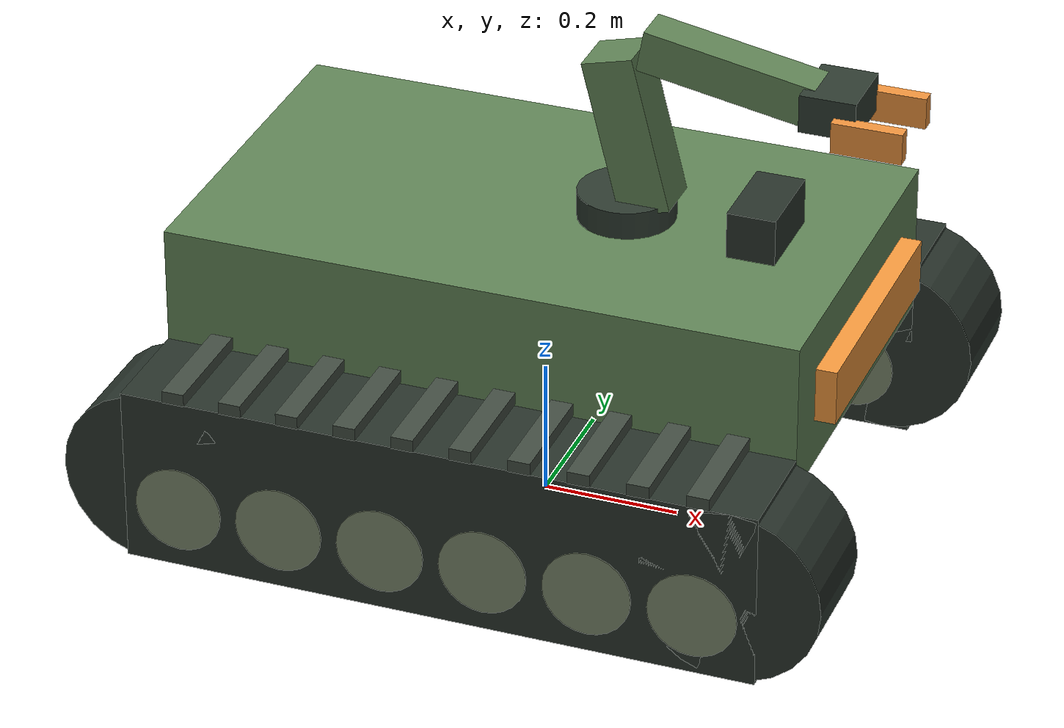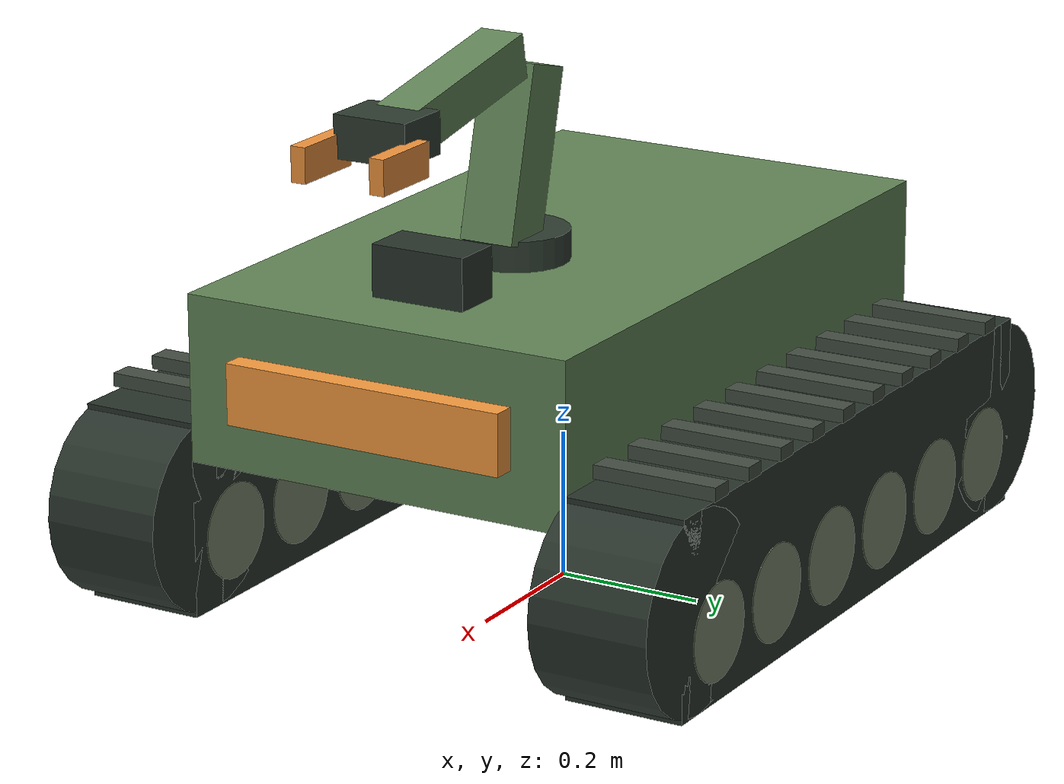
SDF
<?xml version='1.0' encoding='utf-8'?>
<sdf version="1.10">
  <model name="robot">
    <static>false</static>
    <link name="base_link">
      <inertial>
        <mass>52.4</mass>
        <pose>0 0 0.35 0 0 0</pose>
        <inertia>
          <ixx>1.4846666666666668</ixx>
          <iyy>3.9072933333333335</iyy>
          <izz>4.969266666666667</izz>
        </inertia>
      </inertial>
      <collision name="body_collision">
        <pose>0 0 0.36 0 0 0</pose>
        <geometry>
          <box>
            <size>0.78 0.46 0.18</size>
          </box>
        </geometry>
        <surface>
          <friction>
            <ode>
              <mu>0.6</mu>
              <mu2>0.6</mu2>
            </ode>
          </friction>
        </surface>
      </collision>
      <visual name="body">
        <pose>0 0 0.36 0 0 0</pose>
        <geometry>
          <box>
            <size>0.92 0.54 0.22</size>
          </box>
        </geometry>
        <material>
          <diffuse>0.38 0.52 0.34 1</diffuse>
        </material>
      </visual>
      <visual name="front_marker">
        <pose>0.47000000000000003 0 0.36 0 0 0</pose>
        <geometry>
          <box>
            <size>0.04 0.38880000000000003 0.08</size>
          </box>
        </geometry>
        <material>
          <diffuse>0.96 0.6 0.24 1</diffuse>
        </material>
      </visual>
      <visual name="camera">
        <pose>0.322 0 0.503 0 0 0</pose>
        <geometry>
          <box>
            <size>0.07 0.13 0.07</size>
          </box>
        </geometry>
        <material>
          <diffuse>0.16 0.2 0.17 1</diffuse>
        </material>
      </visual>
      <visual name="left_track_envelope">
        <pose>0 0.35 0.17 0 0 0</pose>
        <geometry>
          <box>
            <size>0.92 0.16 0.26</size>
          </box>
        </geometry>
        <material>
          <diffuse>0.16 0.2 0.17 1</diffuse>
        </material>
      </visual>
      <visual name="left_rear_idler_visual">
        <pose>-0.42 0.35 0.17 1.5707963267948966 0 0</pose>
        <geometry>
          <cylinder>
            <radius>0.13</radius>
            <length>0.16</length>
          </cylinder>
        </geometry>
        <material>
          <diffuse>0.16 0.2 0.17 1</diffuse>
        </material>
      </visual>
      <visual name="left_front_idler_visual">
        <pose>0.42 0.35 0.17 1.5707963267948966 0 0</pose>
        <geometry>
          <cylinder>
            <radius>0.13</radius>
            <length>0.16</length>
          </cylinder>
        </geometry>
        <material>
          <diffuse>0.16 0.2 0.17 1</diffuse>
        </material>
      </visual>
      <visual name="left_tread_0">
        <pose>-0.378 0.35 0.31200000000000006 0 0 0</pose>
        <geometry>
          <box>
            <size>0.032 0.1728 0.018</size>
          </box>
        </geometry>
        <material>
          <diffuse>0.26 0.3 0.26 1</diffuse>
        </material>
      </visual>
      <visual name="left_tread_1">
        <pose>-0.294 0.35 0.31200000000000006 0 0 0</pose>
        <geometry>
          <box>
            <size>0.032 0.1728 0.018</size>
          </box>
        </geometry>
        <material>
          <diffuse>0.26 0.3 0.26 1</diffuse>
        </material>
      </visual>
      <visual name="left_tread_2">
        <pose>-0.20999999999999996 0.35 0.31200000000000006 0 0 0</pose>
        <geometry>
          <box>
            <size>0.032 0.1728 0.018</size>
          </box>
        </geometry>
        <material>
          <diffuse>0.26 0.3 0.26 1</diffuse>
        </material>
      </visual>
      <visual name="left_tread_3">
        <pose>-0.126 0.35 0.31200000000000006 0 0 0</pose>
        <geometry>
          <box>
            <size>0.032 0.1728 0.018</size>
          </box>
        </geometry>
        <material>
          <diffuse>0.26 0.3 0.26 1</diffuse>
        </material>
      </visual>
      <visual name="left_tread_4">
        <pose>-0.04199999999999998 0.35 0.31200000000000006 0 0 0</pose>
        <geometry>
          <box>
            <size>0.032 0.1728 0.018</size>
          </box>
        </geometry>
        <material>
          <diffuse>0.26 0.3 0.26 1</diffuse>
        </material>
      </visual>
      <visual name="left_tread_5">
        <pose>0.04200000000000004 0.35 0.31200000000000006 0 0 0</pose>
        <geometry>
          <box>
            <size>0.032 0.1728 0.018</size>
          </box>
        </geometry>
        <material>
          <diffuse>0.26 0.3 0.26 1</diffuse>
        </material>
      </visual>
      <visual name="left_tread_6">
        <pose>0.12600000000000006 0.35 0.31200000000000006 0 0 0</pose>
        <geometry>
          <box>
            <size>0.032 0.1728 0.018</size>
          </box>
        </geometry>
        <material>
          <diffuse>0.26 0.3 0.26 1</diffuse>
        </material>
      </visual>
      <visual name="left_tread_7">
        <pose>0.21000000000000002 0.35 0.31200000000000006 0 0 0</pose>
        <geometry>
          <box>
            <size>0.032 0.1728 0.018</size>
          </box>
        </geometry>
        <material>
          <diffuse>0.26 0.3 0.26 1</diffuse>
        </material>
      </visual>
      <visual name="left_tread_8">
        <pose>0.294 0.35 0.31200000000000006 0 0 0</pose>
        <geometry>
          <box>
            <size>0.032 0.1728 0.018</size>
          </box>
        </geometry>
        <material>
          <diffuse>0.26 0.3 0.26 1</diffuse>
        </material>
      </visual>
      <visual name="left_tread_9">
        <pose>0.37799999999999995 0.35 0.31200000000000006 0 0 0</pose>
        <geometry>
          <box>
            <size>0.032 0.1728 0.018</size>
          </box>
        </geometry>
        <material>
          <diffuse>0.26 0.3 0.26 1</diffuse>
        </material>
      </visual>
      <visual name="right_track_envelope">
        <pose>0 -0.35 0.17 0 0 0</pose>
        <geometry>
          <box>
            <size>0.92 0.16 0.26</size>
          </box>
        </geometry>
        <material>
          <diffuse>0.16 0.2 0.17 1</diffuse>
        </material>
      </visual>
      <visual name="right_rear_idler_visual">
        <pose>-0.42 -0.35 0.17 1.5707963267948966 0 0</pose>
        <geometry>
          <cylinder>
            <radius>0.13</radius>
            <length>0.16</length>
          </cylinder>
        </geometry>
        <material>
          <diffuse>0.16 0.2 0.17 1</diffuse>
        </material>
      </visual>
      <visual name="right_front_idler_visual">
        <pose>0.42 -0.35 0.17 1.5707963267948966 0 0</pose>
        <geometry>
          <cylinder>
            <radius>0.13</radius>
            <length>0.16</length>
          </cylinder>
        </geometry>
        <material>
          <diffuse>0.16 0.2 0.17 1</diffuse>
        </material>
      </visual>
      <visual name="right_tread_0">
        <pose>-0.378 -0.35 0.31200000000000006 0 0 0</pose>
        <geometry>
          <box>
            <size>0.032 0.1728 0.018</size>
          </box>
        </geometry>
        <material>
          <diffuse>0.26 0.3 0.26 1</diffuse>
        </material>
      </visual>
      <visual name="right_tread_1">
        <pose>-0.294 -0.35 0.31200000000000006 0 0 0</pose>
        <geometry>
          <box>
            <size>0.032 0.1728 0.018</size>
          </box>
        </geometry>
        <material>
          <diffuse>0.26 0.3 0.26 1</diffuse>
        </material>
      </visual>
      <visual name="right_tread_2">
        <pose>-0.20999999999999996 -0.35 0.31200000000000006 0 0 0</pose>
        <geometry>
          <box>
            <size>0.032 0.1728 0.018</size>
          </box>
        </geometry>
        <material>
          <diffuse>0.26 0.3 0.26 1</diffuse>
        </material>
      </visual>
      <visual name="right_tread_3">
        <pose>-0.126 -0.35 0.31200000000000006 0 0 0</pose>
        <geometry>
          <box>
            <size>0.032 0.1728 0.018</size>
          </box>
        </geometry>
        <material>
          <diffuse>0.26 0.3 0.26 1</diffuse>
        </material>
      </visual>
      <visual name="right_tread_4">
        <pose>-0.04199999999999998 -0.35 0.31200000000000006 0 0 0</pose>
        <geometry>
          <box>
            <size>0.032 0.1728 0.018</size>
          </box>
        </geometry>
        <material>
          <diffuse>0.26 0.3 0.26 1</diffuse>
        </material>
      </visual>
      <visual name="right_tread_5">
        <pose>0.04200000000000004 -0.35 0.31200000000000006 0 0 0</pose>
        <geometry>
          <box>
            <size>0.032 0.1728 0.018</size>
          </box>
        </geometry>
        <material>
          <diffuse>0.26 0.3 0.26 1</diffuse>
        </material>
      </visual>
      <visual name="right_tread_6">
        <pose>0.12600000000000006 -0.35 0.31200000000000006 0 0 0</pose>
        <geometry>
          <box>
            <size>0.032 0.1728 0.018</size>
          </box>
        </geometry>
        <material>
          <diffuse>0.26 0.3 0.26 1</diffuse>
        </material>
      </visual>
      <visual name="right_tread_7">
        <pose>0.21000000000000002 -0.35 0.31200000000000006 0 0 0</pose>
        <geometry>
          <box>
            <size>0.032 0.1728 0.018</size>
          </box>
        </geometry>
        <material>
          <diffuse>0.26 0.3 0.26 1</diffuse>
        </material>
      </visual>
      <visual name="right_tread_8">
        <pose>0.294 -0.35 0.31200000000000006 0 0 0</pose>
        <geometry>
          <box>
            <size>0.032 0.1728 0.018</size>
          </box>
        </geometry>
        <material>
          <diffuse>0.26 0.3 0.26 1</diffuse>
        </material>
      </visual>
      <visual name="right_tread_9">
        <pose>0.37799999999999995 -0.35 0.31200000000000006 0 0 0</pose>
        <geometry>
          <box>
            <size>0.032 0.1728 0.018</size>
          </box>
        </geometry>
        <material>
          <diffuse>0.26 0.3 0.26 1</diffuse>
        </material>
      </visual>
      <visual name="arm_base_0">
        <pose>0.12 0 0.45999999999999996 0 0 0</pose>
        <geometry>
          <cylinder>
            <radius>0.07</radius>
            <length>0.1</length>
          </cylinder>
        </geometry>
        <material>
          <diffuse>0.18 0.23 0.19 1</diffuse>
        </material>
      </visual>
      <visual name="upper_arm_0">
        <pose>0.13 0 0.61 0 -0.25 0</pose>
        <geometry>
          <box>
            <size>0.075 0.075 0.23</size>
          </box>
        </geometry>
        <material>
          <diffuse>0.38 0.52 0.34 1</diffuse>
        </material>
      </visual>
      <visual name="forearm_0">
        <pose>0.27 0 0.72 0 0.18 0</pose>
        <geometry>
          <box>
            <size>0.25 0.06 0.06</size>
          </box>
        </geometry>
        <material>
          <diffuse>0.38 0.52 0.34 1</diffuse>
        </material>
      </visual>
      <visual name="wrist_0">
        <pose>0.42 0 0.7 0 0 0</pose>
        <geometry>
          <box>
            <size>0.08 0.1 0.055</size>
          </box>
        </geometry>
        <material>
          <diffuse>0.18 0.23 0.19 1</diffuse>
        </material>
      </visual>
      <visual name="jaw_0_-0.055">
        <pose>0.48 -0.055 0.6799999999999999 0 0 0</pose>
        <geometry>
          <box>
            <size>0.1 0.02 0.045</size>
          </box>
        </geometry>
        <material>
          <diffuse>0.94 0.58 0.24 1</diffuse>
        </material>
      </visual>
      <visual name="jaw_0_0.055">
        <pose>0.48 0.055 0.6799999999999999 0 0 0</pose>
        <geometry>
          <box>
            <size>0.1 0.02 0.045</size>
          </box>
        </geometry>
        <material>
          <diffuse>0.94 0.58 0.24 1</diffuse>
        </material>
      </visual>
      <sensor name="imu" type="imu">
        <always_on>true</always_on>
        <update_rate>50</update_rate>
        <topic>/garden/imu</topic>
        <imu />
      </sensor>
    </link>
    <link name="left_carrier_0">
      <pose>-0.38 0.35 0.13 0 0 0</pose>
      <inertial>
        <mass>0.05</mass>
        <pose>0 0 0 0 0 0</pose>
        <inertia>
          <ixx>7.5e-06</ixx>
          <iyy>7.5e-06</iyy>
          <izz>7.5e-06</izz>
        </inertia>
      </inertial>
    </link>
    <joint name="left_suspension_0" type="prismatic">
      <parent>base_link</parent>
      <child>left_carrier_0</child>
      <axis>
        <xyz>0 0 1</xyz>
        <limit>
          <lower>-0.07</lower>
          <upper>0.07</upper>
          <effort>2500</effort>
          <velocity>1.5</velocity>
        </limit>
        <dynamics>
          <damping>120</damping>
          <spring_reference>0</spring_reference>
          <spring_stiffness>6500</spring_stiffness>
        </dynamics>
      </axis>
    </joint>
    <link name="left_wheel">
      <pose>-0.38 0.35 0.13 1.5707963267948966 0 0</pose>
      <inertial>
        <mass>1.0</mass>
        <inertia>
          <ixx>0.0030062500000000002</ixx>
          <iyy>0.0030062500000000002</iyy>
          <izz>0.0036125000000000007</izz>
        </inertia>
      </inertial>
      <collision name="wheel_collision">
        <pose>0 0 0 0 0 0</pose>
        <geometry>
          <cylinder>
            <radius>0.085</radius>
            <length>0.12</length>
          </cylinder>
        </geometry>
        <surface>
          <friction>
            <ode>
              <mu>0.9</mu>
              <mu2>0.9</mu2>
            </ode>
          </friction>
        </surface>
      </collision>
      <visual name="roller">
        <pose>0 0 0 0 0 0</pose>
        <geometry>
          <cylinder>
            <radius>0.06375</radius>
            <length>0.162</length>
          </cylinder>
        </geometry>
        <material>
          <diffuse>0.48 0.53 0.42 1</diffuse>
        </material>
      </visual>
    </link>
    <joint name="left_joint" type="revolute">
      <parent>left_carrier_0</parent>
      <child>left_wheel</child>
      <axis>
        <xyz>0 0 -1</xyz>
        <limit>
          <effort>55.0</effort>
          <velocity>12.0</velocity>
        </limit>
      </axis>
    </joint>
    <link name="left_carrier_1">
      <pose>-0.23 0.35 0.13 0 0 0</pose>
      <inertial>
        <mass>0.05</mass>
        <pose>0 0 0 0 0 0</pose>
        <inertia>
          <ixx>7.5e-06</ixx>
          <iyy>7.5e-06</iyy>
          <izz>7.5e-06</izz>
        </inertia>
      </inertial>
    </link>
    <joint name="left_suspension_1" type="prismatic">
      <parent>base_link</parent>
      <child>left_carrier_1</child>
      <axis>
        <xyz>0 0 1</xyz>
        <limit>
          <lower>-0.07</lower>
          <upper>0.07</upper>
          <effort>2500</effort>
          <velocity>1.5</velocity>
        </limit>
        <dynamics>
          <damping>120</damping>
          <spring_reference>0</spring_reference>
          <spring_stiffness>6500</spring_stiffness>
        </dynamics>
      </axis>
    </joint>
    <link name="left_wheel_1">
      <pose>-0.23 0.35 0.13 1.5707963267948966 0 0</pose>
      <inertial>
        <mass>1.0</mass>
        <inertia>
          <ixx>0.0030062500000000002</ixx>
          <iyy>0.0030062500000000002</iyy>
          <izz>0.0036125000000000007</izz>
        </inertia>
      </inertial>
      <collision name="wheel_collision">
        <pose>0 0 0 0 0 0</pose>
        <geometry>
          <cylinder>
            <radius>0.085</radius>
            <length>0.12</length>
          </cylinder>
        </geometry>
        <surface>
          <friction>
            <ode>
              <mu>0.9</mu>
              <mu2>0.9</mu2>
            </ode>
          </friction>
        </surface>
      </collision>
      <visual name="roller">
        <pose>0 0 0 0 0 0</pose>
        <geometry>
          <cylinder>
            <radius>0.06375</radius>
            <length>0.162</length>
          </cylinder>
        </geometry>
        <material>
          <diffuse>0.48 0.53 0.42 1</diffuse>
        </material>
      </visual>
    </link>
    <joint name="left_joint_1" type="revolute">
      <parent>left_carrier_1</parent>
      <child>left_wheel_1</child>
      <axis>
        <xyz>0 0 -1</xyz>
        <limit>
          <effort>55.0</effort>
          <velocity>12.0</velocity>
        </limit>
      </axis>
    </joint>
    <link name="left_carrier_2">
      <pose>-0.08 0.35 0.13 0 0 0</pose>
      <inertial>
        <mass>0.05</mass>
        <pose>0 0 0 0 0 0</pose>
        <inertia>
          <ixx>7.5e-06</ixx>
          <iyy>7.5e-06</iyy>
          <izz>7.5e-06</izz>
        </inertia>
      </inertial>
    </link>
    <joint name="left_suspension_2" type="prismatic">
      <parent>base_link</parent>
      <child>left_carrier_2</child>
      <axis>
        <xyz>0 0 1</xyz>
        <limit>
          <lower>-0.07</lower>
          <upper>0.07</upper>
          <effort>2500</effort>
          <velocity>1.5</velocity>
        </limit>
        <dynamics>
          <damping>120</damping>
          <spring_reference>0</spring_reference>
          <spring_stiffness>6500</spring_stiffness>
        </dynamics>
      </axis>
    </joint>
    <link name="left_wheel_2">
      <pose>-0.08 0.35 0.13 1.5707963267948966 0 0</pose>
      <inertial>
        <mass>1.0</mass>
        <inertia>
          <ixx>0.0030062500000000002</ixx>
          <iyy>0.0030062500000000002</iyy>
          <izz>0.0036125000000000007</izz>
        </inertia>
      </inertial>
      <collision name="wheel_collision">
        <pose>0 0 0 0 0 0</pose>
        <geometry>
          <cylinder>
            <radius>0.085</radius>
            <length>0.12</length>
          </cylinder>
        </geometry>
        <surface>
          <friction>
            <ode>
              <mu>0.9</mu>
              <mu2>0.9</mu2>
            </ode>
          </friction>
        </surface>
      </collision>
      <visual name="roller">
        <pose>0 0 0 0 0 0</pose>
        <geometry>
          <cylinder>
            <radius>0.06375</radius>
            <length>0.162</length>
          </cylinder>
        </geometry>
        <material>
          <diffuse>0.48 0.53 0.42 1</diffuse>
        </material>
      </visual>
    </link>
    <joint name="left_joint_2" type="revolute">
      <parent>left_carrier_2</parent>
      <child>left_wheel_2</child>
      <axis>
        <xyz>0 0 -1</xyz>
        <limit>
          <effort>55.0</effort>
          <velocity>12.0</velocity>
        </limit>
      </axis>
    </joint>
    <link name="left_carrier_3">
      <pose>0.07 0.35 0.13 0 0 0</pose>
      <inertial>
        <mass>0.05</mass>
        <pose>0 0 0 0 0 0</pose>
        <inertia>
          <ixx>7.5e-06</ixx>
          <iyy>7.5e-06</iyy>
          <izz>7.5e-06</izz>
        </inertia>
      </inertial>
    </link>
    <joint name="left_suspension_3" type="prismatic">
      <parent>base_link</parent>
      <child>left_carrier_3</child>
      <axis>
        <xyz>0 0 1</xyz>
        <limit>
          <lower>-0.07</lower>
          <upper>0.07</upper>
          <effort>2500</effort>
          <velocity>1.5</velocity>
        </limit>
        <dynamics>
          <damping>120</damping>
          <spring_reference>0</spring_reference>
          <spring_stiffness>6500</spring_stiffness>
        </dynamics>
      </axis>
    </joint>
    <link name="left_wheel_3">
      <pose>0.07 0.35 0.13 1.5707963267948966 0 0</pose>
      <inertial>
        <mass>1.0</mass>
        <inertia>
          <ixx>0.0030062500000000002</ixx>
          <iyy>0.0030062500000000002</iyy>
          <izz>0.0036125000000000007</izz>
        </inertia>
      </inertial>
      <collision name="wheel_collision">
        <pose>0 0 0 0 0 0</pose>
        <geometry>
          <cylinder>
            <radius>0.085</radius>
            <length>0.12</length>
          </cylinder>
        </geometry>
        <surface>
          <friction>
            <ode>
              <mu>0.9</mu>
              <mu2>0.9</mu2>
            </ode>
          </friction>
        </surface>
      </collision>
      <visual name="roller">
        <pose>0 0 0 0 0 0</pose>
        <geometry>
          <cylinder>
            <radius>0.06375</radius>
            <length>0.162</length>
          </cylinder>
        </geometry>
        <material>
          <diffuse>0.48 0.53 0.42 1</diffuse>
        </material>
      </visual>
    </link>
    <joint name="left_joint_3" type="revolute">
      <parent>left_carrier_3</parent>
      <child>left_wheel_3</child>
      <axis>
        <xyz>0 0 -1</xyz>
        <limit>
          <effort>55.0</effort>
          <velocity>12.0</velocity>
        </limit>
      </axis>
    </joint>
    <link name="left_carrier_4">
      <pose>0.22 0.35 0.13 0 0 0</pose>
      <inertial>
        <mass>0.05</mass>
        <pose>0 0 0 0 0 0</pose>
        <inertia>
          <ixx>7.5e-06</ixx>
          <iyy>7.5e-06</iyy>
          <izz>7.5e-06</izz>
        </inertia>
      </inertial>
    </link>
    <joint name="left_suspension_4" type="prismatic">
      <parent>base_link</parent>
      <child>left_carrier_4</child>
      <axis>
        <xyz>0 0 1</xyz>
        <limit>
          <lower>-0.07</lower>
          <upper>0.07</upper>
          <effort>2500</effort>
          <velocity>1.5</velocity>
        </limit>
        <dynamics>
          <damping>120</damping>
          <spring_reference>0</spring_reference>
          <spring_stiffness>6500</spring_stiffness>
        </dynamics>
      </axis>
    </joint>
    <link name="left_wheel_4">
      <pose>0.22 0.35 0.13 1.5707963267948966 0 0</pose>
      <inertial>
        <mass>1.0</mass>
        <inertia>
          <ixx>0.0030062500000000002</ixx>
          <iyy>0.0030062500000000002</iyy>
          <izz>0.0036125000000000007</izz>
        </inertia>
      </inertial>
      <collision name="wheel_collision">
        <pose>0 0 0 0 0 0</pose>
        <geometry>
          <cylinder>
            <radius>0.085</radius>
            <length>0.12</length>
          </cylinder>
        </geometry>
        <surface>
          <friction>
            <ode>
              <mu>0.9</mu>
              <mu2>0.9</mu2>
            </ode>
          </friction>
        </surface>
      </collision>
      <visual name="roller">
        <pose>0 0 0 0 0 0</pose>
        <geometry>
          <cylinder>
            <radius>0.06375</radius>
            <length>0.162</length>
          </cylinder>
        </geometry>
        <material>
          <diffuse>0.48 0.53 0.42 1</diffuse>
        </material>
      </visual>
    </link>
    <joint name="left_joint_4" type="revolute">
      <parent>left_carrier_4</parent>
      <child>left_wheel_4</child>
      <axis>
        <xyz>0 0 -1</xyz>
        <limit>
          <effort>55.0</effort>
          <velocity>12.0</velocity>
        </limit>
      </axis>
    </joint>
    <link name="left_carrier_5">
      <pose>0.37 0.35 0.13 0 0 0</pose>
      <inertial>
        <mass>0.05</mass>
        <pose>0 0 0 0 0 0</pose>
        <inertia>
          <ixx>7.5e-06</ixx>
          <iyy>7.5e-06</iyy>
          <izz>7.5e-06</izz>
        </inertia>
      </inertial>
    </link>
    <joint name="left_suspension_5" type="prismatic">
      <parent>base_link</parent>
      <child>left_carrier_5</child>
      <axis>
        <xyz>0 0 1</xyz>
        <limit>
          <lower>-0.07</lower>
          <upper>0.07</upper>
          <effort>2500</effort>
          <velocity>1.5</velocity>
        </limit>
        <dynamics>
          <damping>120</damping>
          <spring_reference>0</spring_reference>
          <spring_stiffness>6500</spring_stiffness>
        </dynamics>
      </axis>
    </joint>
    <link name="left_wheel_5">
      <pose>0.37 0.35 0.13 1.5707963267948966 0 0</pose>
      <inertial>
        <mass>1.0</mass>
        <inertia>
          <ixx>0.0030062500000000002</ixx>
          <iyy>0.0030062500000000002</iyy>
          <izz>0.0036125000000000007</izz>
        </inertia>
      </inertial>
      <collision name="wheel_collision">
        <pose>0 0 0 0 0 0</pose>
        <geometry>
          <cylinder>
            <radius>0.085</radius>
            <length>0.12</length>
          </cylinder>
        </geometry>
        <surface>
          <friction>
            <ode>
              <mu>0.9</mu>
              <mu2>0.9</mu2>
            </ode>
          </friction>
        </surface>
      </collision>
      <visual name="roller">
        <pose>0 0 0 0 0 0</pose>
        <geometry>
          <cylinder>
            <radius>0.06375</radius>
            <length>0.162</length>
          </cylinder>
        </geometry>
        <material>
          <diffuse>0.48 0.53 0.42 1</diffuse>
        </material>
      </visual>
    </link>
    <joint name="left_joint_5" type="revolute">
      <parent>left_carrier_5</parent>
      <child>left_wheel_5</child>
      <axis>
        <xyz>0 0 -1</xyz>
        <limit>
          <effort>55.0</effort>
          <velocity>12.0</velocity>
        </limit>
      </axis>
    </joint>
    <link name="right_carrier_0">
      <pose>-0.38 -0.35 0.13 0 0 0</pose>
      <inertial>
        <mass>0.05</mass>
        <pose>0 0 0 0 0 0</pose>
        <inertia>
          <ixx>7.5e-06</ixx>
          <iyy>7.5e-06</iyy>
          <izz>7.5e-06</izz>
        </inertia>
      </inertial>
    </link>
    <joint name="right_suspension_0" type="prismatic">
      <parent>base_link</parent>
      <child>right_carrier_0</child>
      <axis>
        <xyz>0 0 1</xyz>
        <limit>
          <lower>-0.07</lower>
          <upper>0.07</upper>
          <effort>2500</effort>
          <velocity>1.5</velocity>
        </limit>
        <dynamics>
          <damping>120</damping>
          <spring_reference>0</spring_reference>
          <spring_stiffness>6500</spring_stiffness>
        </dynamics>
      </axis>
    </joint>
    <link name="right_wheel">
      <pose>-0.38 -0.35 0.13 1.5707963267948966 0 0</pose>
      <inertial>
        <mass>1.0</mass>
        <inertia>
          <ixx>0.0030062500000000002</ixx>
          <iyy>0.0030062500000000002</iyy>
          <izz>0.0036125000000000007</izz>
        </inertia>
      </inertial>
      <collision name="wheel_collision">
        <pose>0 0 0 0 0 0</pose>
        <geometry>
          <cylinder>
            <radius>0.085</radius>
            <length>0.12</length>
          </cylinder>
        </geometry>
        <surface>
          <friction>
            <ode>
              <mu>0.9</mu>
              <mu2>0.9</mu2>
            </ode>
          </friction>
        </surface>
      </collision>
      <visual name="roller">
        <pose>0 0 0 0 0 0</pose>
        <geometry>
          <cylinder>
            <radius>0.06375</radius>
            <length>0.162</length>
          </cylinder>
        </geometry>
        <material>
          <diffuse>0.48 0.53 0.42 1</diffuse>
        </material>
      </visual>
    </link>
    <joint name="right_joint" type="revolute">
      <parent>right_carrier_0</parent>
      <child>right_wheel</child>
      <axis>
        <xyz>0 0 -1</xyz>
        <limit>
          <effort>55.0</effort>
          <velocity>12.0</velocity>
        </limit>
      </axis>
    </joint>
    <link name="right_carrier_1">
      <pose>-0.23 -0.35 0.13 0 0 0</pose>
      <inertial>
        <mass>0.05</mass>
        <pose>0 0 0 0 0 0</pose>
        <inertia>
          <ixx>7.5e-06</ixx>
          <iyy>7.5e-06</iyy>
          <izz>7.5e-06</izz>
        </inertia>
      </inertial>
    </link>
    <joint name="right_suspension_1" type="prismatic">
      <parent>base_link</parent>
      <child>right_carrier_1</child>
      <axis>
        <xyz>0 0 1</xyz>
        <limit>
          <lower>-0.07</lower>
          <upper>0.07</upper>
          <effort>2500</effort>
          <velocity>1.5</velocity>
        </limit>
        <dynamics>
          <damping>120</damping>
          <spring_reference>0</spring_reference>
          <spring_stiffness>6500</spring_stiffness>
        </dynamics>
      </axis>
    </joint>
    <link name="right_wheel_1">
      <pose>-0.23 -0.35 0.13 1.5707963267948966 0 0</pose>
      <inertial>
        <mass>1.0</mass>
        <inertia>
          <ixx>0.0030062500000000002</ixx>
          <iyy>0.0030062500000000002</iyy>
          <izz>0.0036125000000000007</izz>
        </inertia>
      </inertial>
      <collision name="wheel_collision">
        <pose>0 0 0 0 0 0</pose>
        <geometry>
          <cylinder>
            <radius>0.085</radius>
            <length>0.12</length>
          </cylinder>
        </geometry>
        <surface>
          <friction>
            <ode>
              <mu>0.9</mu>
              <mu2>0.9</mu2>
            </ode>
          </friction>
        </surface>
      </collision>
      <visual name="roller">
        <pose>0 0 0 0 0 0</pose>
        <geometry>
          <cylinder>
            <radius>0.06375</radius>
            <length>0.162</length>
          </cylinder>
        </geometry>
        <material>
          <diffuse>0.48 0.53 0.42 1</diffuse>
        </material>
      </visual>
    </link>
    <joint name="right_joint_1" type="revolute">
      <parent>right_carrier_1</parent>
      <child>right_wheel_1</child>
      <axis>
        <xyz>0 0 -1</xyz>
        <limit>
          <effort>55.0</effort>
          <velocity>12.0</velocity>
        </limit>
      </axis>
    </joint>
    <link name="right_carrier_2">
      <pose>-0.08 -0.35 0.13 0 0 0</pose>
      <inertial>
        <mass>0.05</mass>
        <pose>0 0 0 0 0 0</pose>
        <inertia>
          <ixx>7.5e-06</ixx>
          <iyy>7.5e-06</iyy>
          <izz>7.5e-06</izz>
        </inertia>
      </inertial>
    </link>
    <joint name="right_suspension_2" type="prismatic">
      <parent>base_link</parent>
      <child>right_carrier_2</child>
      <axis>
        <xyz>0 0 1</xyz>
        <limit>
          <lower>-0.07</lower>
          <upper>0.07</upper>
          <effort>2500</effort>
          <velocity>1.5</velocity>
        </limit>
        <dynamics>
          <damping>120</damping>
          <spring_reference>0</spring_reference>
          <spring_stiffness>6500</spring_stiffness>
        </dynamics>
      </axis>
    </joint>
    <link name="right_wheel_2">
      <pose>-0.08 -0.35 0.13 1.5707963267948966 0 0</pose>
      <inertial>
        <mass>1.0</mass>
        <inertia>
          <ixx>0.0030062500000000002</ixx>
          <iyy>0.0030062500000000002</iyy>
          <izz>0.0036125000000000007</izz>
        </inertia>
      </inertial>
      <collision name="wheel_collision">
        <pose>0 0 0 0 0 0</pose>
        <geometry>
          <cylinder>
            <radius>0.085</radius>
            <length>0.12</length>
          </cylinder>
        </geometry>
        <surface>
          <friction>
            <ode>
              <mu>0.9</mu>
              <mu2>0.9</mu2>
            </ode>
          </friction>
        </surface>
      </collision>
      <visual name="roller">
        <pose>0 0 0 0 0 0</pose>
        <geometry>
          <cylinder>
            <radius>0.06375</radius>
            <length>0.162</length>
          </cylinder>
        </geometry>
        <material>
          <diffuse>0.48 0.53 0.42 1</diffuse>
        </material>
      </visual>
    </link>
    <joint name="right_joint_2" type="revolute">
      <parent>right_carrier_2</parent>
      <child>right_wheel_2</child>
      <axis>
        <xyz>0 0 -1</xyz>
        <limit>
          <effort>55.0</effort>
          <velocity>12.0</velocity>
        </limit>
      </axis>
    </joint>
    <link name="right_carrier_3">
      <pose>0.07 -0.35 0.13 0 0 0</pose>
      <inertial>
        <mass>0.05</mass>
        <pose>0 0 0 0 0 0</pose>
        <inertia>
          <ixx>7.5e-06</ixx>
          <iyy>7.5e-06</iyy>
          <izz>7.5e-06</izz>
        </inertia>
      </inertial>
    </link>
    <joint name="right_suspension_3" type="prismatic">
      <parent>base_link</parent>
      <child>right_carrier_3</child>
      <axis>
        <xyz>0 0 1</xyz>
        <limit>
          <lower>-0.07</lower>
          <upper>0.07</upper>
          <effort>2500</effort>
          <velocity>1.5</velocity>
        </limit>
        <dynamics>
          <damping>120</damping>
          <spring_reference>0</spring_reference>
          <spring_stiffness>6500</spring_stiffness>
        </dynamics>
      </axis>
    </joint>
    <link name="right_wheel_3">
      <pose>0.07 -0.35 0.13 1.5707963267948966 0 0</pose>
      <inertial>
        <mass>1.0</mass>
        <inertia>
          <ixx>0.0030062500000000002</ixx>
          <iyy>0.0030062500000000002</iyy>
          <izz>0.0036125000000000007</izz>
        </inertia>
      </inertial>
      <collision name="wheel_collision">
        <pose>0 0 0 0 0 0</pose>
        <geometry>
          <cylinder>
            <radius>0.085</radius>
            <length>0.12</length>
          </cylinder>
        </geometry>
        <surface>
          <friction>
            <ode>
              <mu>0.9</mu>
              <mu2>0.9</mu2>
            </ode>
          </friction>
        </surface>
      </collision>
      <visual name="roller">
        <pose>0 0 0 0 0 0</pose>
        <geometry>
          <cylinder>
            <radius>0.06375</radius>
            <length>0.162</length>
          </cylinder>
        </geometry>
        <material>
          <diffuse>0.48 0.53 0.42 1</diffuse>
        </material>
      </visual>
    </link>
    <joint name="right_joint_3" type="revolute">
      <parent>right_carrier_3</parent>
      <child>right_wheel_3</child>
      <axis>
        <xyz>0 0 -1</xyz>
        <limit>
          <effort>55.0</effort>
          <velocity>12.0</velocity>
        </limit>
      </axis>
    </joint>
    <link name="right_carrier_4">
      <pose>0.22 -0.35 0.13 0 0 0</pose>
      <inertial>
        <mass>0.05</mass>
        <pose>0 0 0 0 0 0</pose>
        <inertia>
          <ixx>7.5e-06</ixx>
          <iyy>7.5e-06</iyy>
          <izz>7.5e-06</izz>
        </inertia>
      </inertial>
    </link>
    <joint name="right_suspension_4" type="prismatic">
      <parent>base_link</parent>
      <child>right_carrier_4</child>
      <axis>
        <xyz>0 0 1</xyz>
        <limit>
          <lower>-0.07</lower>
          <upper>0.07</upper>
          <effort>2500</effort>
          <velocity>1.5</velocity>
        </limit>
        <dynamics>
          <damping>120</damping>
          <spring_reference>0</spring_reference>
          <spring_stiffness>6500</spring_stiffness>
        </dynamics>
      </axis>
    </joint>
    <link name="right_wheel_4">
      <pose>0.22 -0.35 0.13 1.5707963267948966 0 0</pose>
      <inertial>
        <mass>1.0</mass>
        <inertia>
          <ixx>0.0030062500000000002</ixx>
          <iyy>0.0030062500000000002</iyy>
          <izz>0.0036125000000000007</izz>
        </inertia>
      </inertial>
      <collision name="wheel_collision">
        <pose>0 0 0 0 0 0</pose>
        <geometry>
          <cylinder>
            <radius>0.085</radius>
            <length>0.12</length>
          </cylinder>
        </geometry>
        <surface>
          <friction>
            <ode>
              <mu>0.9</mu>
              <mu2>0.9</mu2>
            </ode>
          </friction>
        </surface>
      </collision>
      <visual name="roller">
        <pose>0 0 0 0 0 0</pose>
        <geometry>
          <cylinder>
            <radius>0.06375</radius>
            <length>0.162</length>
          </cylinder>
        </geometry>
        <material>
          <diffuse>0.48 0.53 0.42 1</diffuse>
        </material>
      </visual>
    </link>
    <joint name="right_joint_4" type="revolute">
      <parent>right_carrier_4</parent>
      <child>right_wheel_4</child>
      <axis>
        <xyz>0 0 -1</xyz>
        <limit>
          <effort>55.0</effort>
          <velocity>12.0</velocity>
        </limit>
      </axis>
    </joint>
    <link name="right_carrier_5">
      <pose>0.37 -0.35 0.13 0 0 0</pose>
      <inertial>
        <mass>0.05</mass>
        <pose>0 0 0 0 0 0</pose>
        <inertia>
          <ixx>7.5e-06</ixx>
          <iyy>7.5e-06</iyy>
          <izz>7.5e-06</izz>
        </inertia>
      </inertial>
    </link>
    <joint name="right_suspension_5" type="prismatic">
      <parent>base_link</parent>
      <child>right_carrier_5</child>
      <axis>
        <xyz>0 0 1</xyz>
        <limit>
          <lower>-0.07</lower>
          <upper>0.07</upper>
          <effort>2500</effort>
          <velocity>1.5</velocity>
        </limit>
        <dynamics>
          <damping>120</damping>
          <spring_reference>0</spring_reference>
          <spring_stiffness>6500</spring_stiffness>
        </dynamics>
      </axis>
    </joint>
    <link name="right_wheel_5">
      <pose>0.37 -0.35 0.13 1.5707963267948966 0 0</pose>
      <inertial>
        <mass>1.0</mass>
        <inertia>
          <ixx>0.0030062500000000002</ixx>
          <iyy>0.0030062500000000002</iyy>
          <izz>0.0036125000000000007</izz>
        </inertia>
      </inertial>
      <collision name="wheel_collision">
        <pose>0 0 0 0 0 0</pose>
        <geometry>
          <cylinder>
            <radius>0.085</radius>
            <length>0.12</length>
          </cylinder>
        </geometry>
        <surface>
          <friction>
            <ode>
              <mu>0.9</mu>
              <mu2>0.9</mu2>
            </ode>
          </friction>
        </surface>
      </collision>
      <visual name="roller">
        <pose>0 0 0 0 0 0</pose>
        <geometry>
          <cylinder>
            <radius>0.06375</radius>
            <length>0.162</length>
          </cylinder>
        </geometry>
        <material>
          <diffuse>0.48 0.53 0.42 1</diffuse>
        </material>
      </visual>
    </link>
    <joint name="right_joint_5" type="revolute">
      <parent>right_carrier_5</parent>
      <child>right_wheel_5</child>
      <axis>
        <xyz>0 0 -1</xyz>
        <limit>
          <effort>55.0</effort>
          <velocity>12.0</velocity>
        </limit>
      </axis>
    </joint>
    <plugin filename="gz-sim-diff-drive-system" name="gz::sim::systems::DiffDrive">
      <left_joint>left_joint</left_joint>
      <left_joint>left_joint_1</left_joint>
      <left_joint>left_joint_2</left_joint>
      <left_joint>left_joint_3</left_joint>
      <left_joint>left_joint_4</left_joint>
      <left_joint>left_joint_5</left_joint>
      <right_joint>right_joint</right_joint>
      <right_joint>right_joint_1</right_joint>
      <right_joint>right_joint_2</right_joint>
      <right_joint>right_joint_3</right_joint>
      <right_joint>right_joint_4</right_joint>
      <right_joint>right_joint_5</right_joint>
      <wheel_separation>0.7</wheel_separation>
      <wheel_radius>0.085</wheel_radius>
      <topic>/garden/cmd_vel</topic>
      <odom_topic>/garden/odom</odom_topic>
      <frame_id>odom</frame_id>
      <child_frame_id>base_link</child_frame_id>
      <odom_publish_frequency>30</odom_publish_frequency>
      <min_linear_velocity>-0.35</min_linear_velocity>
      <max_linear_velocity>0.35</max_linear_velocity>
      <min_angular_velocity>-0.9</min_angular_velocity>
      <max_angular_velocity>0.9</max_angular_velocity>
      <min_linear_acceleration>-0.6</min_linear_acceleration>
      <max_linear_acceleration>0.6</max_linear_acceleration>
      <min_angular_acceleration>-1.5</min_angular_acceleration>
      <max_angular_acceleration>1.5</max_angular_acceleration>
    </plugin>
    <plugin filename="gz-sim-joint-state-publisher-system" name="gz::sim::systems::JointStatePublisher">
      <topic>/garden/joint_states</topic>
      <joint_name>left_joint</joint_name>
      <joint_name>left_joint_1</joint_name>
      <joint_name>left_joint_2</joint_name>
      <joint_name>left_joint_3</joint_name>
      <joint_name>left_joint_4</joint_name>
      <joint_name>left_joint_5</joint_name>
      <joint_name>right_joint</joint_name>
      <joint_name>right_joint_1</joint_name>
      <joint_name>right_joint_2</joint_name>
      <joint_name>right_joint_3</joint_name>
      <joint_name>right_joint_4</joint_name>
      <joint_name>right_joint_5</joint_name>
      <update_rate>100</update_rate>
    </plugin>
    <plugin filename="gz-sim-pose-publisher-system" name="gz::sim::systems::PosePublisher">
      <publish_model_pose>true</publish_model_pose>
      <publish_link_pose>true</publish_link_pose>
      <publish_visual_pose>false</publish_visual_pose>
      <publish_collision_pose>false</publish_collision_pose>
      <publish_sensor_pose>false</publish_sensor_pose>
      <use_pose_vector_msg>true</use_pose_vector_msg>
      <update_frequency>20</update_frequency>
    </plugin>
  </model>
</sdf>
